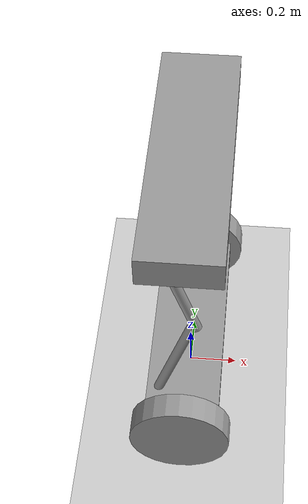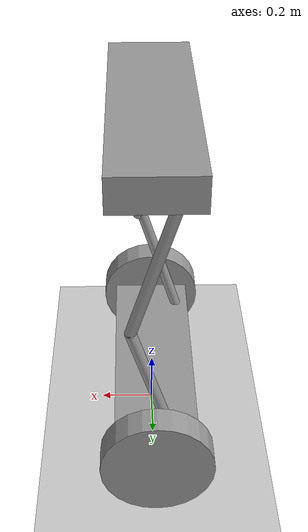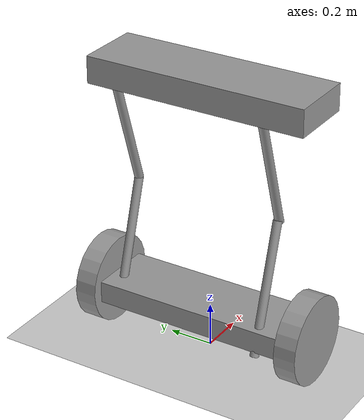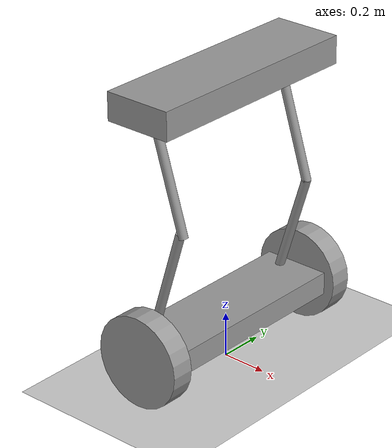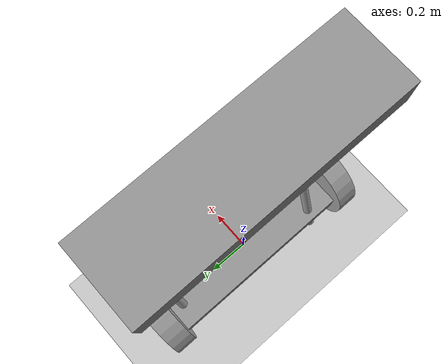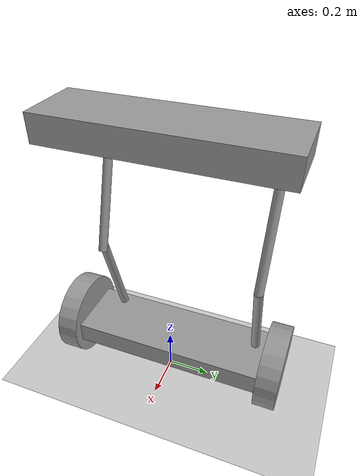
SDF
<sdf version="1.6">
 <world name="default">
  <plugin name="welcome" filename="libwelcome.so"/>
  <light name="sun" type="directional">
   <pose>0 0 10 0 -0 0</pose>
   <diffuse>0.8 0.8 0.8 1</diffuse>
   <specular>0.2 0.2 0.2 1</specular>
   <attenuation>
    <range>1000</range>
    <constant>0.9</constant>
    <linear>0.01</linear>
    <quadratic>0.001</quadratic>
   </attenuation>
   <direction>-0.5 0.1 -0.9</direction>
  </light>
  <model name="ground_plane">
   <static>1</static>
   <link name="link">
    <collision name="collision">
     <geometry><plane><normal>0 0 1</normal><size>100 100</size></plane></geometry>
     <surface>
      <contact><collide_bitmask>65535</collide_bitmask></contact>
      <friction><ode><mu>100</mu><mu2>50</mu2></ode></friction>
     </surface>
    </collision>
    <visual name="visual">
     <cast_shadows>0</cast_shadows>
     <geometry><plane><normal>0 0 1</normal><size>100 100</size></plane></geometry>
     <material>
      <script><uri>file://media/materials/scripts/gazebo.material</uri><name>Gazebo/Grey</name></script>
     </material>
    </visual>
   </link>
  </model>
  <gravity>0 0 -9.8</gravity>
  <magnetic_field>6e-06 2.3e-05 -4.2e-05</magnetic_field>
  <atmosphere type="adiabatic"/>
  <physics name="default_physics" default="0" type="ode">
   <max_step_size>0.001</max_step_size>
   <real_time_factor>1</real_time_factor>
   <real_time_update_rate>1000</real_time_update_rate>
  </physics>
  <scene><ambient>0.4 0.4 0.4 1</ambient><background>0.7 0.7 0.7 1</background><shadows>1</shadows></scene>
  <audio><device>default</device></audio>
  <spherical_coordinates>
   <surface_model>EARTH_WGS84</surface_model>
   <latitude_deg>0</latitude_deg>
   <longitude_deg>0</longitude_deg>
   <elevation>0</elevation>
   <heading_deg>0</heading_deg>
  </spherical_coordinates>
  <model name="HumanoidRobot">
   <link name="link_1">
    <inertial>
     <mass>1.23312</mass>
     <inertia>
      <ixx>0.106781</ixx>
      <ixy>0</ixy>
      <ixz>0</ixz>
      <iyy>0.0107742</iyy>
      <iyz>0</iyz>
      <izz>0.114503</izz>
     </inertia>
    </inertial>
    <pose>0.01979 -0.040473 0.587742 0 -0 0</pose>
    <visual name="visual">
     <geometry><box><size>0.3 1.01207 0.121852</size></box></geometry>
     <material>
      <lighting>1</lighting>
      <script><uri>file://media/materials/scripts/gazebo.material</uri><name>Gazebo/Grey</name></script>
      <shader type="pixel"><normal_map>__default__</normal_map></shader>
      <ambient>0.3 0.3 0.3 1</ambient>
      <diffuse>0.7 0.7 0.7 1</diffuse>
      <specular>0.01 0.01 0.01 1</specular>
      <emissive>0 0 0 1</emissive>
     </material>
    </visual>
    <collision name="collision">
     <geometry><box><size>0.3 1.01207 0.121852</size></box></geometry>
     <surface>
      <friction>
       <ode><mu>1</mu><mu2>1</mu2><fdir1>0 0 0</fdir1><slip1>0</slip1><slip2>0</slip2></ode>
       <torsional>
        <coefficient>1</coefficient>
        <patch_radius>0</patch_radius>
        <surface_radius>0</surface_radius>
        <use_patch_radius>1</use_patch_radius>
        <ode><slip>0</slip></ode>
       </torsional>
      </friction>
      <bounce><restitution_coefficient>0</restitution_coefficient><threshold>1e+06</threshold></bounce>
      <contact>
       <collide_without_contact>0</collide_without_contact>
       <collide_without_contact_bitmask>1</collide_without_contact_bitmask>
       <collide_bitmask>1</collide_bitmask>
       <ode>
        <soft_cfm>0</soft_cfm>
        <soft_erp>0.2</soft_erp>
        <kp>1e+13</kp>
        <kd>1</kd>
        <max_vel>0.01</max_vel>
        <min_depth>0</min_depth>
       </ode>
       <bullet>
        <split_impulse>1</split_impulse>
        <split_impulse_penetration_threshold>-0.01</split_impulse_penetration_threshold>
        <soft_cfm>0</soft_cfm>
        <soft_erp>0.2</soft_erp>
        <kp>1e+13</kp>
        <kd>1</kd>
       </bullet>
      </contact>
     </surface>
    </collision>
   </link>
   <link name="link_2">
    <inertial>
     <mass>0.00130479</mass>
     <inertia>
      <ixx>4.197e-05</ixx>
      <ixy>0</ixy>
      <ixz>0</ixz>
      <iyy>4.197e-05</iyy>
      <iyz>0</iyz>
      <izz>3.5e-07</izz>
     </inertia>
    </inertial>
    <pose>-0.022447 -0.345824 0.300772 0 -0.3 0</pose>
    <visual name="visual">
     <geometry><cylinder><radius>0.02</radius><length>0.6</length></cylinder></geometry>
     <material>
      <lighting>1</lighting>
      <script><uri>file://media/materials/scripts/gazebo.material</uri><name>Gazebo/Grey</name></script>
      <shader type="pixel"><normal_map>__default__</normal_map></shader>
      <ambient>0.3 0.3 0.3 1</ambient>
      <diffuse>0.7 0.7 0.7 1</diffuse>
      <specular>0.01 0.01 0.01 1</specular>
      <emissive>0 0 0 1</emissive>
     </material>
    </visual>
    <collision name="collision">
     <geometry><cylinder><radius>0.02</radius><length>0.6</length></cylinder></geometry>
     <surface>
      <friction>
       <ode><mu>1</mu><mu2>1</mu2><fdir1>0 0 0</fdir1><slip1>0</slip1><slip2>0</slip2></ode>
       <torsional>
        <coefficient>1</coefficient>
        <patch_radius>0</patch_radius>
        <surface_radius>0</surface_radius>
        <use_patch_radius>1</use_patch_radius>
        <ode><slip>0</slip></ode>
       </torsional>
      </friction>
      <bounce><restitution_coefficient>0</restitution_coefficient><threshold>1e+06</threshold></bounce>
      <contact>
       <collide_without_contact>0</collide_without_contact>
       <collide_without_contact_bitmask>1</collide_without_contact_bitmask>
       <collide_bitmask>1</collide_bitmask>
       <ode>
        <soft_cfm>0</soft_cfm>
        <soft_erp>0.2</soft_erp>
        <kp>1e+13</kp>
        <kd>1</kd>
        <max_vel>0.01</max_vel>
        <min_depth>0</min_depth>
       </ode>
       <bullet>
        <split_impulse>1</split_impulse>
        <split_impulse_penetration_threshold>-0.01</split_impulse_penetration_threshold>
        <soft_cfm>0</soft_cfm>
        <soft_erp>0.2</soft_erp>
        <kp>1e+13</kp>
        <kd>1</kd>
       </bullet>
      </contact>
     </surface>
    </collision>
   </link>
   <link name="link_2_clone">
    <inertial>
     <mass>0.00130479</mass>
     <inertia>
      <ixx>4.197e-05</ixx>
      <ixy>0</ixy>
      <ixz>0</ixz>
      <iyy>4.197e-05</iyy>
      <iyz>0</iyz>
      <izz>3.5e-07</izz>
     </inertia>
    </inertial>
    <pose>0.013434 0.375718 0.300772 0 -0.3 0</pose>
    <visual name="visual">
     <geometry><cylinder><radius>0.02</radius><length>0.6</length></cylinder></geometry>
     <material>
      <lighting>1</lighting>
      <script><uri>file://media/materials/scripts/gazebo.material</uri><name>Gazebo/Grey</name></script>
      <shader type="pixel"><normal_map>__default__</normal_map></shader>
      <ambient>0.3 0.3 0.3 1</ambient>
      <diffuse>0.7 0.7 0.7 1</diffuse>
      <specular>0.01 0.01 0.01 1</specular>
      <emissive>0 0 0 1</emissive>
     </material>
    </visual>
    <collision name="collision">
     <geometry><cylinder><radius>0.02</radius><length>0.6</length></cylinder></geometry>
     <surface>
      <friction>
       <ode><mu>1</mu><mu2>1</mu2><fdir1>0 0 0</fdir1><slip1>0</slip1><slip2>0</slip2></ode>
       <torsional>
        <coefficient>1</coefficient>
        <patch_radius>0</patch_radius>
        <surface_radius>0</surface_radius>
        <use_patch_radius>1</use_patch_radius>
        <ode><slip>0</slip></ode>
       </torsional>
      </friction>
      <bounce><restitution_coefficient>0</restitution_coefficient><threshold>1e+06</threshold></bounce>
      <contact>
       <collide_without_contact>0</collide_without_contact>
       <collide_without_contact_bitmask>1</collide_without_contact_bitmask>
       <collide_bitmask>1</collide_bitmask>
       <ode>
        <soft_cfm>0</soft_cfm>
        <soft_erp>0.2</soft_erp>
        <kp>1e+13</kp>
        <kd>1</kd>
        <max_vel>0.01</max_vel>
        <min_depth>0</min_depth>
       </ode>
       <bullet>
        <split_impulse>1</split_impulse>
        <split_impulse_penetration_threshold>-0.01</split_impulse_penetration_threshold>
        <soft_cfm>0</soft_cfm>
        <soft_erp>0.2</soft_erp>
        <kp>1e+13</kp>
        <kd>1</kd>
       </bullet>
      </contact>
     </surface>
    </collision>
   </link>
   <link name="link_2_clone_0">
    <inertial>
     <mass>0.00130475</mass>
     <inertia>
      <ixx>3.927e-05</ixx>
      <ixy>0</ixy>
      <ixz>0</ixz>
      <iyy>3.927e-05</iyy>
      <iyz>0</iyz>
      <izz>2.6e-07</izz>
     </inertia>
    </inertial>
    <pose>-0.037314 -0.345824 -0.257269 0 0.3 0</pose>
    <visual name="visual">
     <geometry><cylinder><radius>0.02</radius><length>0.6</length></cylinder></geometry>
     <material>
      <lighting>1</lighting>
      <script><uri>file://media/materials/scripts/gazebo.material</uri><name>Gazebo/Grey</name></script>
      <shader type="pixel"><normal_map>__default__</normal_map></shader>
      <ambient>0.3 0.3 0.3 1</ambient>
      <diffuse>0.7 0.7 0.7 1</diffuse>
      <specular>0.01 0.01 0.01 1</specular>
      <emissive>0 0 0 1</emissive>
     </material>
    </visual>
    <collision name="collision">
     <geometry><cylinder><radius>0.02</radius><length>0.6</length></cylinder></geometry>
     <surface>
      <friction>
       <ode><mu>1</mu><mu2>1</mu2><fdir1>0 0 0</fdir1><slip1>0</slip1><slip2>0</slip2></ode>
       <torsional>
        <coefficient>1</coefficient>
        <patch_radius>0</patch_radius>
        <surface_radius>0</surface_radius>
        <use_patch_radius>1</use_patch_radius>
        <ode><slip>0</slip></ode>
       </torsional>
      </friction>
      <bounce><restitution_coefficient>0</restitution_coefficient><threshold>1e+06</threshold></bounce>
      <contact>
       <collide_without_contact>0</collide_without_contact>
       <collide_without_contact_bitmask>1</collide_without_contact_bitmask>
       <collide_bitmask>1</collide_bitmask>
       <ode>
        <soft_cfm>0</soft_cfm>
        <soft_erp>0.2</soft_erp>
        <kp>1e+13</kp>
        <kd>1</kd>
        <max_vel>0.01</max_vel>
        <min_depth>0</min_depth>
       </ode>
       <bullet>
        <split_impulse>1</split_impulse>
        <split_impulse_penetration_threshold>-0.01</split_impulse_penetration_threshold>
        <soft_cfm>0</soft_cfm>
        <soft_erp>0.2</soft_erp>
        <kp>1e+13</kp>
        <kd>1</kd>
       </bullet>
      </contact>
     </surface>
    </collision>
   </link>
   <link name="link_2_clone_clone">
    <inertial>
     <mass>0.00130479</mass>
     <inertia>
      <ixx>4.197e-05</ixx>
      <ixy>0</ixy>
      <ixz>0</ixz>
      <iyy>4.197e-05</iyy>
      <iyz>0</iyz>
      <izz>3.5e-07</izz>
     </inertia>
    </inertial>
    <pose>0.013434 0.375718 -0.263839 0 0.3 0</pose>
    <visual name="visual">
     <geometry><cylinder><radius>0.02</radius><length>0.6</length></cylinder></geometry>
     <material>
      <lighting>1</lighting>
      <script><uri>file://media/materials/scripts/gazebo.material</uri><name>Gazebo/Grey</name></script>
      <shader type="pixel"><normal_map>__default__</normal_map></shader>
      <ambient>0.3 0.3 0.3 1</ambient>
      <diffuse>0.7 0.7 0.7 1</diffuse>
      <specular>0.01 0.01 0.01 1</specular>
      <emissive>0 0 0 1</emissive>
     </material>
    </visual>
    <collision name="collision">
     <geometry><cylinder><radius>0.02</radius><length>0.6</length></cylinder></geometry>
     <surface>
      <friction>
       <ode><mu>1</mu><mu2>1</mu2><fdir1>0 0 0</fdir1><slip1>0</slip1><slip2>0</slip2></ode>
       <torsional>
        <coefficient>1</coefficient>
        <patch_radius>0</patch_radius>
        <surface_radius>0</surface_radius>
        <use_patch_radius>1</use_patch_radius>
        <ode><slip>0</slip></ode>
       </torsional>
      </friction>
      <bounce><restitution_coefficient>0</restitution_coefficient><threshold>1e+06</threshold></bounce>
      <contact>
       <collide_without_contact>0</collide_without_contact>
       <collide_without_contact_bitmask>1</collide_without_contact_bitmask>
       <collide_bitmask>1</collide_bitmask>
       <ode>
        <soft_cfm>0</soft_cfm>
        <soft_erp>0.2</soft_erp>
        <kp>1e+13</kp>
        <kd>1</kd>
        <max_vel>0.01</max_vel>
        <min_depth>0</min_depth>
       </ode>
       <bullet>
        <split_impulse>1</split_impulse>
        <split_impulse_penetration_threshold>-0.01</split_impulse_penetration_threshold>
        <soft_cfm>0</soft_cfm>
        <soft_erp>0.2</soft_erp>
        <kp>1e+13</kp>
        <kd>1</kd>
       </bullet>
      </contact>
     </surface>
    </collision>
   </link>
   <model name="myrobot">
    <link name="link">
     <inertial>
      <mass>1</mass>
      <inertia>
       <ixx>0.166667</ixx>
       <ixy>0</ixy>
       <ixz>0</ixz>
       <iyy>0.166667</iyy>
       <iyz>0</iyz>
       <izz>0.166667</izz>
      </inertia>
     </inertial>
     <pose>-0 -0 0.2 0 -0 0</pose>
     <visual name="visual">
      <geometry><box><size>0.3 1 0.1</size></box></geometry>
      <material>
       <script><name>Gazebo/Grey</name><uri>file://media/materials/scripts/gazebo.material</uri></script>
       <shader type="pixel"><normal_map>__default__</normal_map></shader>
       <ambient>0.3 0.3 0.3 1</ambient>
       <diffuse>0.7 0.7 0.7 1</diffuse>
       <specular>0.01 0.01 0.01 1</specular>
       <emissive>0 0 0 1</emissive>
      </material>
     </visual>
     <collision name="collision">
      <geometry><box><size>0.3 1 0.1</size></box></geometry>
      <surface>
       <friction>
        <ode><mu>1</mu><mu2>1</mu2><fdir1>0 0 0</fdir1><slip1>0</slip1><slip2>0</slip2></ode>
        <torsional>
         <coefficient>1</coefficient>
         <patch_radius>0</patch_radius>
         <surface_radius>0</surface_radius>
         <use_patch_radius>1</use_patch_radius>
         <ode><slip>0</slip></ode>
        </torsional>
       </friction>
       <bounce><restitution_coefficient>0</restitution_coefficient><threshold>1e+06</threshold></bounce>
       <contact>
        <collide_without_contact>0</collide_without_contact>
        <collide_without_contact_bitmask>1</collide_without_contact_bitmask>
        <collide_bitmask>1</collide_bitmask>
        <ode>
         <soft_cfm>0</soft_cfm>
         <soft_erp>0.2</soft_erp>
         <kp>1e+13</kp>
         <kd>1</kd>
         <max_vel>0.01</max_vel>
         <min_depth>0</min_depth>
        </ode>
        <bullet>
         <split_impulse>1</split_impulse>
         <split_impulse_penetration_threshold>-0.01</split_impulse_penetration_threshold>
         <soft_cfm>0</soft_cfm>
         <soft_erp>0.2</soft_erp>
         <kp>1e+13</kp>
         <kd>1</kd>
        </bullet>
       </contact>
      </surface>
     </collision>
    </link>
    <link name="link_0">
     <inertial>
      <mass>1</mass>
      <inertia><ixx>0.145833</ixx><ixy>0</ixy><ixz>0</ixz><iyy>0.145833</iyy><iyz>0</iyz><izz>0.125</izz></inertia>
     </inertial>
     <pose>-0 -0.5 0.2 1.5707 -0 0</pose>
     <visual name="visual">
      <geometry><cylinder><radius>0.2</radius><length>0.1</length></cylinder></geometry>
      <material>
       <lighting>1</lighting>
       <script><uri>file://media/materials/scripts/gazebo.material</uri><name>Gazebo/Grey</name></script>
       <shader type="pixel"><normal_map>__default__</normal_map></shader>
       <ambient>0.3 0.3 0.3 1</ambient>
       <diffuse>0.7 0.7 0.7 1</diffuse>
       <specular>0.01 0.01 0.01 1</specular>
       <emissive>0 0 0 1</emissive>
      </material>
     </visual>
     <collision name="collision">
      <geometry><cylinder><radius>0.2</radius><length>0.1</length></cylinder></geometry>
      <surface>
       <friction>
        <ode><mu>1</mu><mu2>1</mu2><fdir1>0 0 0</fdir1><slip1>0</slip1><slip2>0</slip2></ode>
        <torsional>
         <coefficient>1</coefficient>
         <patch_radius>0</patch_radius>
         <surface_radius>0</surface_radius>
         <use_patch_radius>1</use_patch_radius>
         <ode><slip>0</slip></ode>
        </torsional>
       </friction>
       <bounce><restitution_coefficient>0</restitution_coefficient><threshold>1e+06</threshold></bounce>
       <contact>
        <collide_without_contact>0</collide_without_contact>
        <collide_without_contact_bitmask>1</collide_without_contact_bitmask>
        <collide_bitmask>1</collide_bitmask>
        <ode>
         <soft_cfm>0</soft_cfm>
         <soft_erp>0.2</soft_erp>
         <kp>1e+13</kp>
         <kd>1</kd>
         <max_vel>0.01</max_vel>
         <min_depth>0</min_depth>
        </ode>
        <bullet>
         <split_impulse>1</split_impulse>
         <split_impulse_penetration_threshold>-0.01</split_impulse_penetration_threshold>
         <soft_cfm>0</soft_cfm>
         <soft_erp>0.2</soft_erp>
         <kp>1e+13</kp>
         <kd>1</kd>
        </bullet>
       </contact>
      </surface>
     </collision>
    </link>
    <link name="link_0_clone">
     <inertial>
      <mass>1</mass>
      <inertia><ixx>0.145833</ixx><ixy>0</ixy><ixz>0</ixz><iyy>0.145833</iyy><iyz>0</iyz><izz>0.125</izz></inertia>
     </inertial>
     <pose>-0 0.5 0.2 1.5707 -0 0</pose>
     <visual name="visual">
      <geometry><cylinder><radius>0.2</radius><length>0.1</length></cylinder></geometry>
      <material>
       <lighting>1</lighting>
       <script><uri>file://media/materials/scripts/gazebo.material</uri><name>Gazebo/Grey</name></script>
       <shader type="pixel"><normal_map>__default__</normal_map></shader>
       <ambient>0.3 0.3 0.3 1</ambient>
       <diffuse>0.7 0.7 0.7 1</diffuse>
       <specular>0.01 0.01 0.01 1</specular>
       <emissive>0 0 0 1</emissive>
      </material>
     </visual>
     <collision name="collision">
      <geometry><cylinder><radius>0.2</radius><length>0.1</length></cylinder></geometry>
      <surface>
       <friction>
        <ode><mu>1</mu><mu2>1</mu2><fdir1>0 0 0</fdir1><slip1>0</slip1><slip2>0</slip2></ode>
        <torsional>
         <coefficient>1</coefficient>
         <patch_radius>0</patch_radius>
         <surface_radius>0</surface_radius>
         <use_patch_radius>1</use_patch_radius>
         <ode><slip>0</slip></ode>
        </torsional>
       </friction>
       <bounce><restitution_coefficient>0</restitution_coefficient><threshold>1e+06</threshold></bounce>
       <contact>
        <collide_without_contact>0</collide_without_contact>
        <collide_without_contact_bitmask>1</collide_without_contact_bitmask>
        <collide_bitmask>1</collide_bitmask>
        <ode>
         <soft_cfm>0</soft_cfm>
         <soft_erp>0.2</soft_erp>
         <kp>1e+13</kp>
         <kd>1</kd>
         <max_vel>0.01</max_vel>
         <min_depth>0</min_depth>
        </ode>
        <bullet>
         <split_impulse>1</split_impulse>
         <split_impulse_penetration_threshold>-0.01</split_impulse_penetration_threshold>
         <soft_cfm>0</soft_cfm>
         <soft_erp>0.2</soft_erp>
         <kp>1e+13</kp>
         <kd>1</kd>
        </bullet>
       </contact>
      </surface>
     </collision>
    </link>
    <static>0</static>
    <pose>0.013103 -0.019312 -0.668179 0 -0 0</pose>
   </model>
   <joint name="link_1_JOINT_2" type="revolute">
    <parent>link_1</parent>
    <child>link_2</child>
    <axis>
     <xyz>1 0 0</xyz>
     <use_parent_model_frame>0</use_parent_model_frame>
     <limit>
      <lower>-1.79769e+308</lower>
      <upper>1.79769e+308</upper>
      <effort>-1</effort>
      <velocity>-1</velocity>
     </limit>
     <dynamics>
      <spring_reference>0</spring_reference>
      <spring_stiffness>0</spring_stiffness>
      <damping>0</damping>
     </dynamics>
    </axis>
    <physics>
     <ode><limit><cfm>0</cfm><erp>0.2</erp></limit><suspension><cfm>0</cfm><erp>0.2</erp></suspension></ode>
    </physics>
   </joint>
   <joint name="link_1_JOINT_3" type="revolute">
    <parent>link_1</parent>
    <child>link_2_clone</child>
    <axis>
     <xyz>1 0 0</xyz>
     <use_parent_model_frame>0</use_parent_model_frame>
     <limit>
      <lower>-1.79769e+308</lower>
      <upper>1.79769e+308</upper>
      <effort>-1</effort>
      <velocity>-1</velocity>
     </limit>
     <dynamics>
      <spring_reference>0</spring_reference>
      <spring_stiffness>0</spring_stiffness>
      <damping>0</damping>
     </dynamics>
    </axis>
    <physics>
     <ode><limit><cfm>0</cfm><erp>0.2</erp></limit><suspension><cfm>0</cfm><erp>0.2</erp></suspension></ode>
    </physics>
   </joint>
   <joint name="link_2_JOINT_0" type="revolute">
    <parent>link_2</parent>
    <child>link_2_clone_0</child>
    <axis>
     <xyz>1 0 0</xyz>
     <use_parent_model_frame>0</use_parent_model_frame>
     <limit>
      <lower>-1.79769e+308</lower>
      <upper>1.79769e+308</upper>
      <effort>-1</effort>
      <velocity>-1</velocity>
     </limit>
     <dynamics>
      <spring_reference>0</spring_reference>
      <spring_stiffness>0</spring_stiffness>
      <damping>0</damping>
     </dynamics>
    </axis>
    <physics>
     <ode><limit><cfm>0</cfm><erp>0.2</erp></limit><suspension><cfm>0</cfm><erp>0.2</erp></suspension></ode>
    </physics>
   </joint>
   <joint name="link_2_clone_0_JOINT_4" type="revolute">
    <parent>myrobot::link</parent>
    <child>link_2_clone_0</child>
    <axis>
     <xyz>1 0 0</xyz>
     <use_parent_model_frame>0</use_parent_model_frame>
     <limit>
      <lower>-1.79769e+308</lower>
      <upper>1.79769e+308</upper>
      <effort>-1</effort>
      <velocity>-1</velocity>
     </limit>
     <dynamics>
      <spring_reference>0</spring_reference>
      <spring_stiffness>0</spring_stiffness>
      <damping>0</damping>
     </dynamics>
    </axis>
    <physics>
     <ode><limit><cfm>0</cfm><erp>0.2</erp></limit><suspension><cfm>0</cfm><erp>0.2</erp></suspension></ode>
    </physics>
   </joint>
   <joint name="link_2_clone_JOINT_1" type="revolute">
    <parent>link_2_clone</parent>
    <child>link_2_clone_clone</child>
    <axis>
     <xyz>1 0 0</xyz>
     <use_parent_model_frame>0</use_parent_model_frame>
     <limit>
      <lower>-1.79769e+308</lower>
      <upper>1.79769e+308</upper>
      <effort>-1</effort>
      <velocity>-1</velocity>
     </limit>
     <dynamics>
      <spring_reference>0</spring_reference>
      <spring_stiffness>0</spring_stiffness>
      <damping>0</damping>
     </dynamics>
    </axis>
    <physics>
     <ode><limit><cfm>0</cfm><erp>0.2</erp></limit><suspension><cfm>0</cfm><erp>0.2</erp></suspension></ode>
    </physics>
   </joint>
   <joint name="link_JOINT_5" type="revolute">
    <parent>myrobot::link</parent>
    <child>link_2_clone_clone</child>
    <axis>
     <xyz>1 0 0</xyz>
     <use_parent_model_frame>0</use_parent_model_frame>
     <limit>
      <lower>-1.79769e+308</lower>
      <upper>1.79769e+308</upper>
      <effort>-1</effort>
      <velocity>-1</velocity>
     </limit>
     <dynamics>
      <spring_reference>0</spring_reference>
      <spring_stiffness>0</spring_stiffness>
      <damping>0</damping>
     </dynamics>
    </axis>
    <physics>
     <ode><limit><cfm>0</cfm><erp>0.2</erp></limit><suspension><cfm>0</cfm><erp>0.2</erp></suspension></ode>
    </physics>
   </joint>
   <static>0</static>
   <pose>-0.01979 0.040473 0.665518 0 -0 0</pose>
  </model>
 </world>
</sdf>
